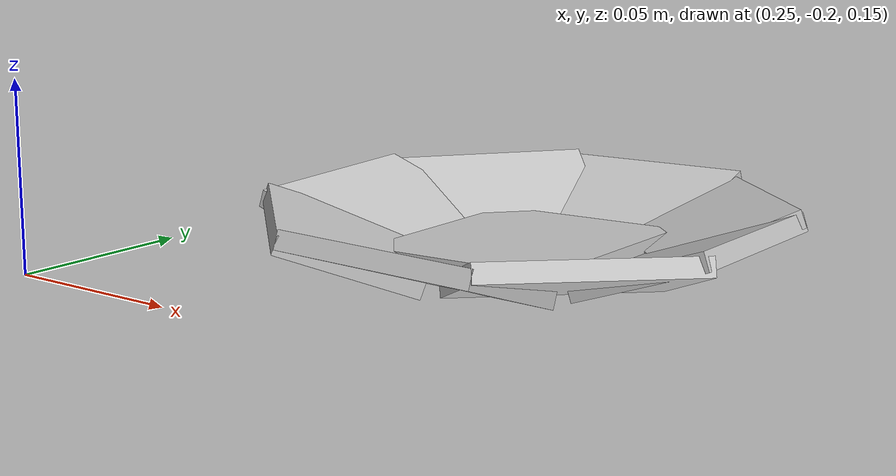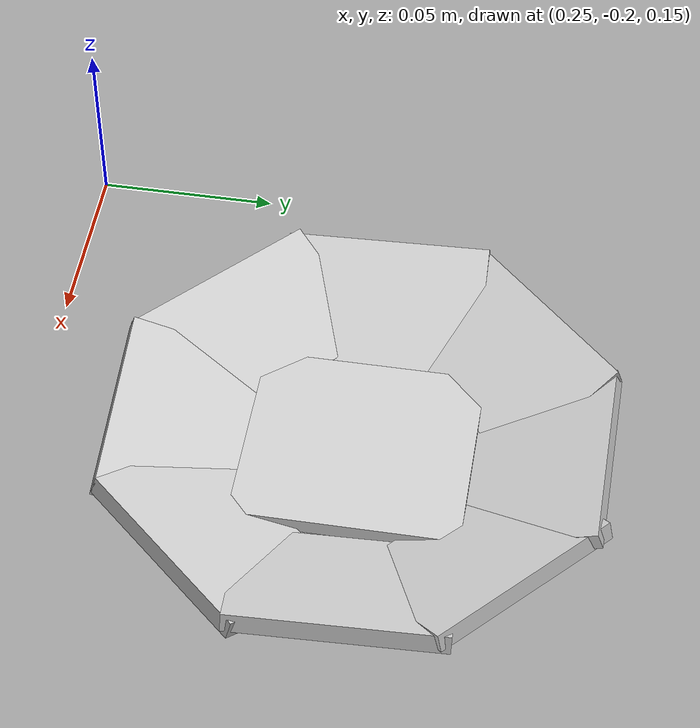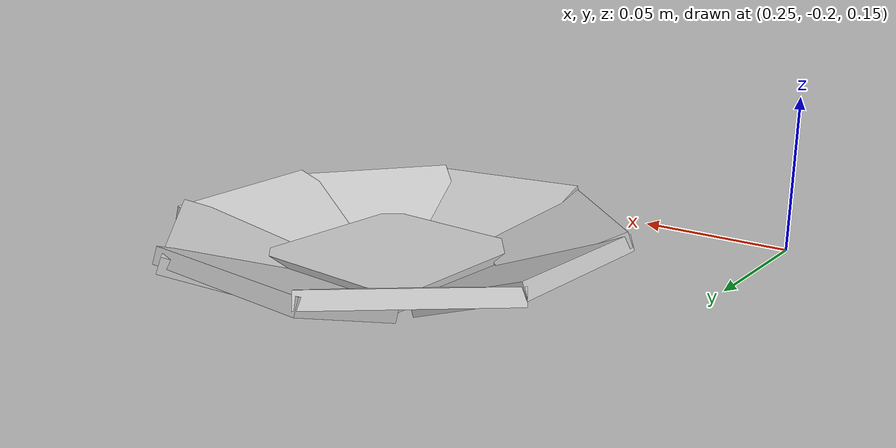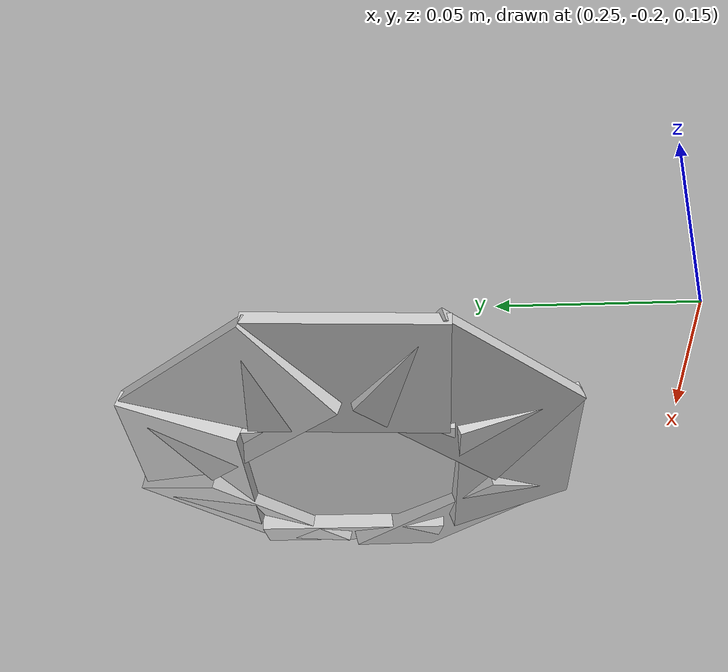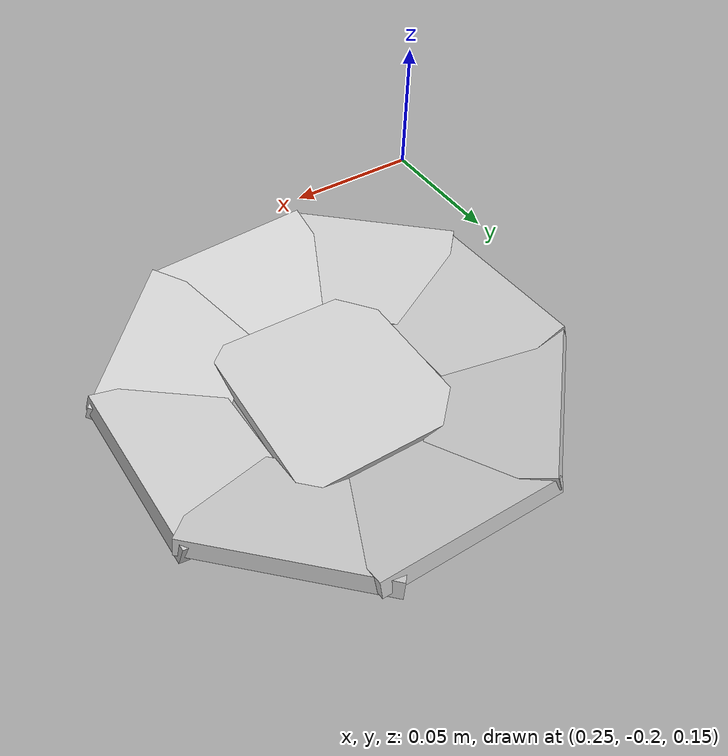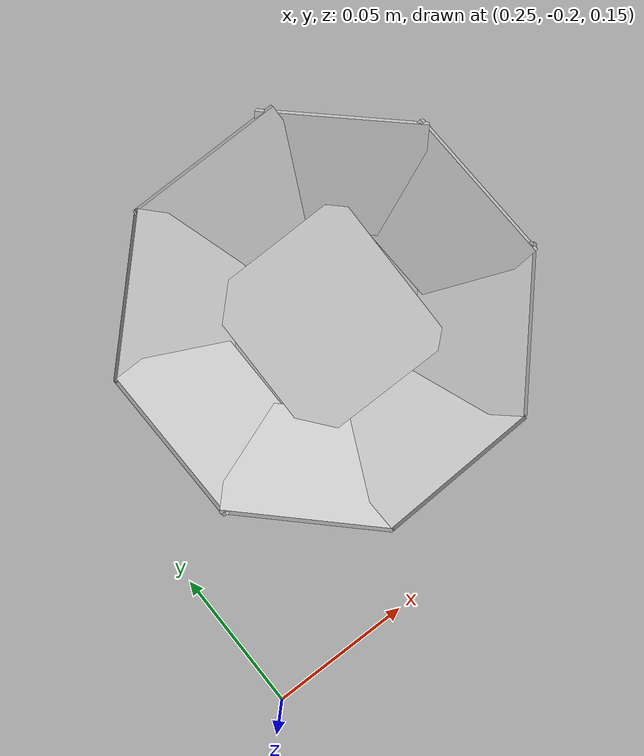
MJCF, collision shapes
<?xml version='1.0' encoding='utf-8'?>
<mujoco>
  <compiler autolimits="true" />
  <default>
    <geom density="1200" />
  </default>
  <asset>
    <texture file="/root/repo/LIBERO/libero/libero/assets/stable_scanned_objects/plate/texture.png" name="p1_tex-model" type="2d" />
    <material name="p1_model" reflectance="0.5" texrepeat="1 1" texture="p1_tex-model" texuniform="false" />
    <mesh file="/root/repo/LIBERO/libero/libero/assets/stable_scanned_objects/plate/visual/model_vis.msh" name="p1_model_vis" scale="0.5 0.5 0.5" />
  </asset>
  <worldbody>
    <body name="p1_plate" pos="0.34 -0.109 0.15" quat="1.0 0.0 0.0 0.0">
      <body name="p1_object">
        <geom solimp="0.998 0.998 0.001" solref="0.001 1" density="100" friction="0.95 0.3 0.1" type="mesh" mesh="p1_model_vis" conaffinity="0" contype="0" group="1" material="p1_model" />
        <geom solimp="0.998 0.998 0.001" solref="0.001 1" density="100" friction="0.95 0.3 0.1" type="box" pos="0.00000 -0.00000 0.00313" quat="0.49356 0.49356 -0.50636 0.50636" size="0.00222 0.02851 0.03057" group="0" rgba="0.8 0.8 0.8 0.3" />
        <geom solimp="0.998 0.998 0.001" solref="0.001 1" density="100" friction="0.95 0.3 0.1" type="box" pos="-0.00000 0.04828 0.00696" quat="0.70574 0.12139 0.68790 0.11832" size="0.00254 0.01913 0.02851" group="0" rgba="0.8 0.8 0.8 0.3" />
        <geom solimp="0.998 0.998 0.001" solref="0.001 1" density="100" friction="0.95 0.3 0.1" type="box" pos="-0.00000 0.04828 0.00696" quat="0.70574 0.12139 0.68790 0.11832" size="0.00254 0.01913 0.02851" group="0" rgba="0.8 0.8 0.8 0.3" />
        <geom solimp="0.998 0.998 0.001" solref="0.001 1" density="100" friction="0.95 0.3 0.1" type="box" pos="0.03237 0.03583 0.00696" quat="0.70114 0.36036 0.59839 -0.14306" size="0.00254 0.01913 0.02851" group="0" rgba="0.8 0.8 0.8 0.3" />
        <geom solimp="0.998 0.998 0.001" solref="0.001 1" density="100" friction="0.95 0.3 0.1" type="box" pos="0.04818 0.00314 0.00696" quat="0.59590 0.55892 0.41899 -0.39618" size="0.00254 0.01913 0.02851" group="0" rgba="0.8 0.8 0.8 0.3" />
        <geom solimp="0.998 0.998 0.001" solref="0.001 1" density="100" friction="0.95 0.3 0.1" type="box" pos="0.03658 -0.03152 0.00696" quat="0.67591 -0.40164 0.59224 0.17629" size="0.00254 0.01913 0.02851" group="0" rgba="0.8 0.8 0.8 0.3" />
        <geom solimp="0.998 0.998 0.001" solref="0.001 1" density="100" friction="0.95 0.3 0.1" type="box" pos="0.00230 -0.04823 0.00696" quat="0.13507 0.69059 -0.10500 -0.70272" size="0.00254 0.01913 0.02851" group="0" rgba="0.8 0.8 0.8 0.3" />
        <geom solimp="0.998 0.998 0.001" solref="0.001 1" density="100" friction="0.95 0.3 0.1" type="box" pos="-0.03334 -0.03492 0.00696" quat="0.59339 0.15267 0.69911 -0.36855" size="0.00254 0.01913 0.02851" group="0" rgba="0.8 0.8 0.8 0.3" />
        <geom solimp="0.998 0.998 0.001" solref="0.001 1" density="100" friction="0.95 0.3 0.1" type="box" pos="-0.04827 -0.00130 0.00696" quat="0.40827 0.40746 0.58825 -0.56679" size="0.00254 0.01913 0.02851" group="0" rgba="0.8 0.8 0.8 0.3" />
        <geom solimp="0.998 0.998 0.001" solref="0.001 1" density="100" friction="0.95 0.3 0.1" type="box" pos="-0.03442 0.03386 0.00696" quat="0.60516 -0.15392 0.68136 0.38190" size="0.00254 0.01913 0.02851" group="0" rgba="0.8 0.8 0.8 0.3" />
      </body>
      <site rgba="0 0 0 0" size="0.005" pos="0 0 -0.06" name="p1_bottom_site" />
      <site rgba="0 0 0 0" size="0.005" pos="0 0 0.04" name="p1_top_site" />
      <site rgba="0 0 0 0" size="0.005" pos="0.025 0.025 0" name="p1_horizontal_radius_site" />
      <freejoint />
    </body>
  </worldbody>
</mujoco>
